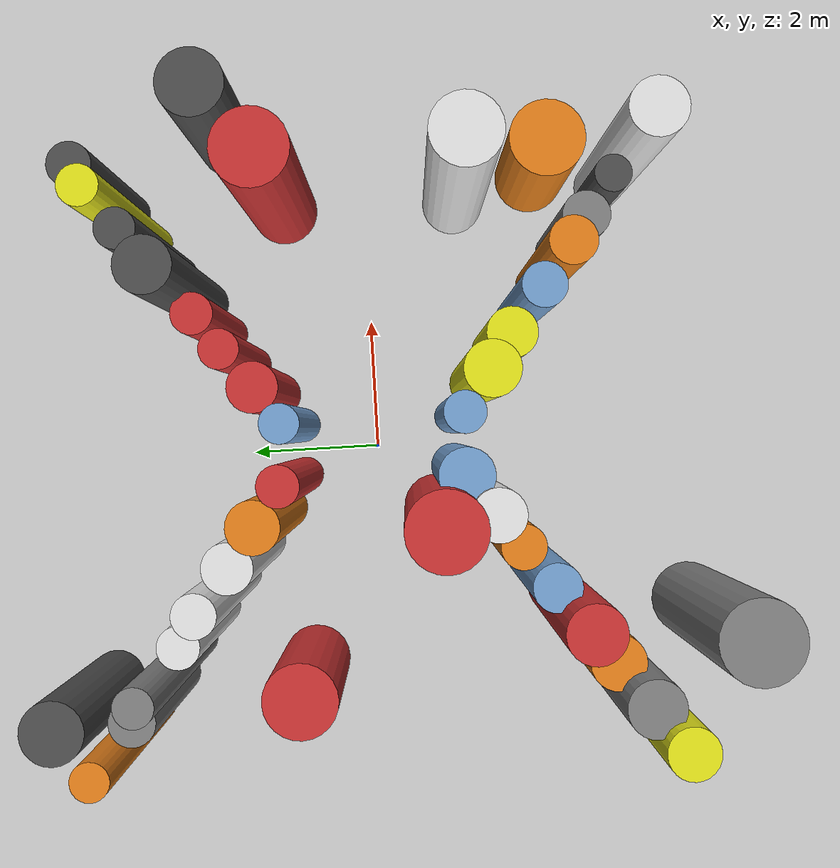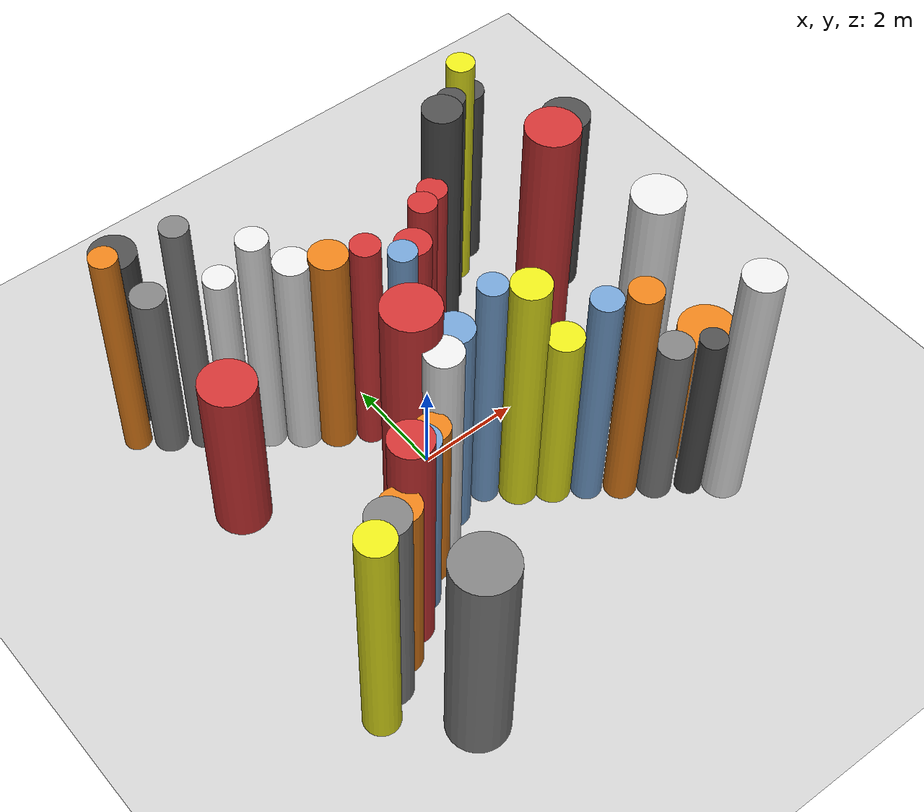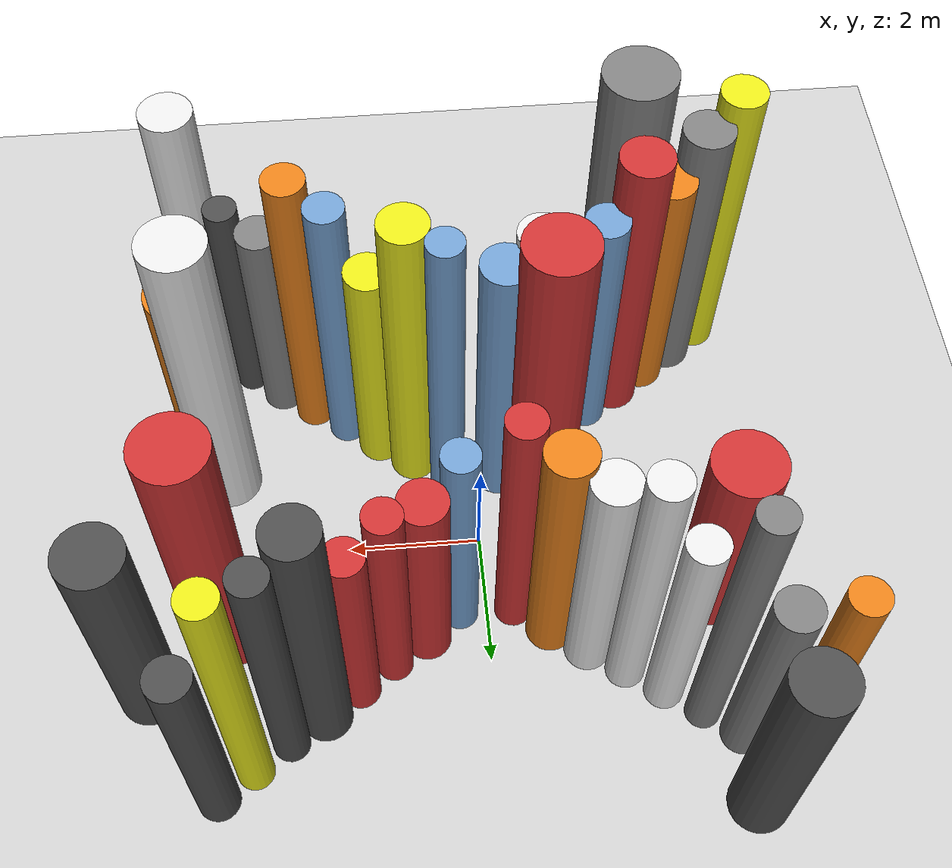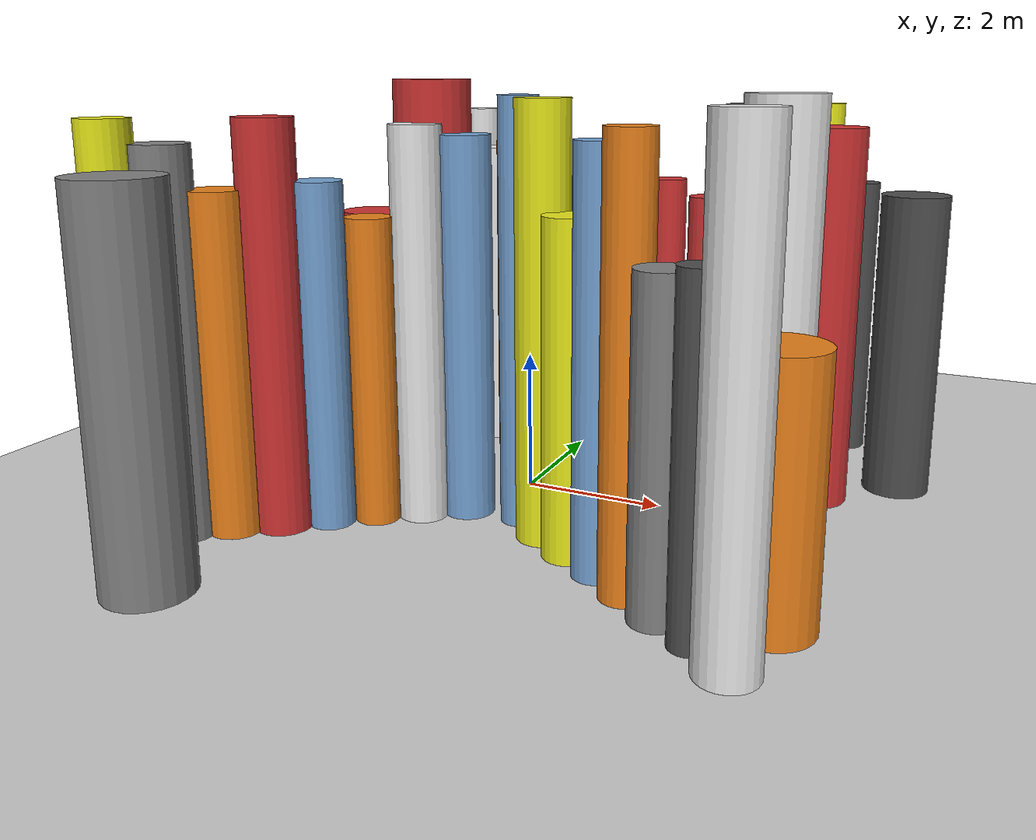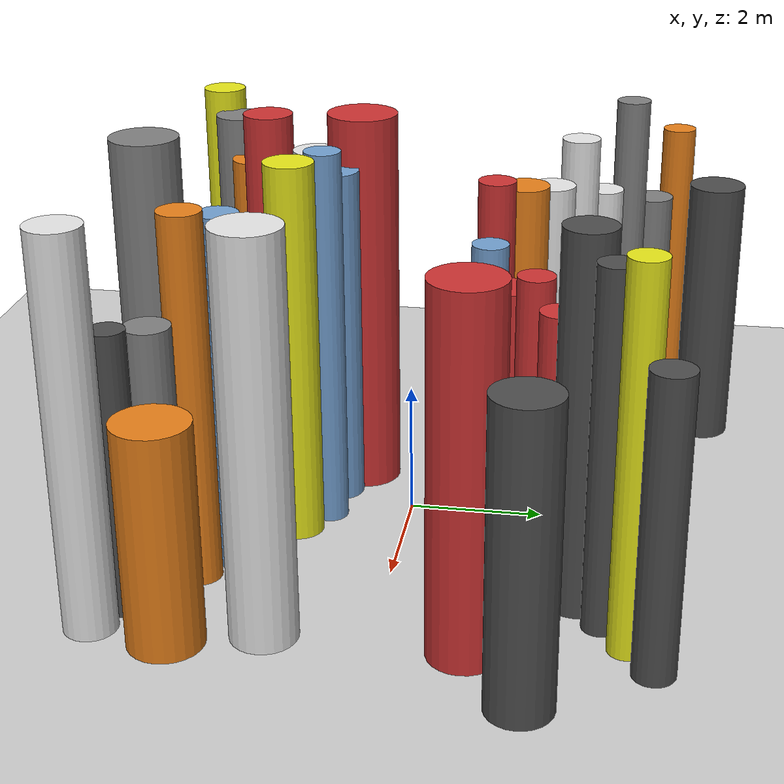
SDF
<?xml version='1.0'?>
<sdf version='1.6'>
  <world name='routeA_rl_v1__dense_recovery__rl_train__bottleneck_corridor__000067'>
    <!-- Sun light -->
    <light name='sun' type='directional'>
      <cast_shadows>1</cast_shadows>
      <pose>0 0 10 0 0 0</pose>
      <diffuse>0.8 0.8 0.8 1</diffuse>
      <specular>0.2 0.2 0.2 1</specular>
      <attenuation>
        <range>1000</range>
        <constant>0.9</constant>
        <linear>0.01</linear>
        <quadratic>0.001</quadratic>
      </attenuation>
      <direction>-0.5 0.1 -0.9</direction>
    </light>

    <!-- Ground plane -->
    <model name='ground_plane'>
      <static>1</static>
      <link name='link'>
        <collision name='collision'>
          <geometry>
            <plane>
              <normal>0 0 1</normal>
              <size>100 100</size>
            </plane>
          </geometry>
          <surface>
            <contact>
              <collide_bitmask>65535</collide_bitmask>
              <ode/>
            </contact>
            <friction>
              <ode>
                <mu>100</mu>
                <mu2>50</mu2>
              </ode>
              <torsional><ode/></torsional>
            </friction>
            <bounce/>
          </surface>
          <max_contacts>10</max_contacts>
        </collision>
        <visual name='visual'>
          <cast_shadows>0</cast_shadows>
          <geometry>
            <plane>
              <normal>0 0 1</normal>
              <size>100 100</size>
            </plane>
          </geometry>
          <material>
            <script>
              <uri>file://media/materials/scripts/gazebo.material</uri>
              <n>Gazebo/Grey</n>
            </script>
          </material>
        </visual>
      </link>
    </model>

    <!-- Environment -->
    <magnetic_field>6e-06 2.3e-05 -4.2e-05</magnetic_field>
    <atmosphere type='adiabatic'/>
    <physics name='default_physics' default='0' type='ode'>
      <gravity>0 0 -9.8</gravity>
      <max_step_size>0.004</max_step_size>
      <real_time_factor>1</real_time_factor>
      <real_time_update_rate>250</real_time_update_rate>
    </physics>
    <scene>
      <ambient>0.4 0.4 0.4 1</ambient>
      <background>0.7 0.7 0.7 1</background>
      <shadows>1</shadows>
    </scene>
    <wind/>
    <spherical_coordinates>
      <surface_model>EARTH_WGS84</surface_model>
      <latitude_deg>0</latitude_deg>
      <longitude_deg>0</longitude_deg>
      <elevation>0</elevation>
      <heading_deg>0</heading_deg>
    </spherical_coordinates>

    <!-- ============ OBSTACLES (40) ============ -->
    <model name='funnel_l_0'>
      <static>1</static>
      <link name='link'>
        <visual name='visual'>
          <geometry>
            <cylinder>
              <radius>0.3439</radius>
              <length>5.5111</length>
            </cylinder>
          </geometry>
          <material>
            <script>
              <n>Gazebo/Yellow</n>
              <uri>file://media/materials/scripts/gazebo.material</uri>
            </script>
            <ambient>0.9 0.9 0.1 1</ambient>
          </material>
        </visual>
        <collision name='collision'>
          <geometry>
            <cylinder>
              <radius>0.3439</radius>
              <length>5.5111</length>
            </cylinder>
          </geometry>
          <max_contacts>10</max_contacts>
          <surface>
            <contact><ode/></contact>
            <bounce/>
            <friction>
              <ode><mu>1</mu><mu2>1</mu2></ode>
              <torsional><ode/></torsional>
            </friction>
          </surface>
        </collision>
      </link>
      <pose>-4.0000 -3.8000 2.7555 0 0 0.0000</pose>
    </model>

    <model name='funnel_r_0'>
      <static>1</static>
      <link name='link'>
        <visual name='visual'>
          <geometry>
            <cylinder>
              <radius>0.2608</radius>
              <length>5.1161</length>
            </cylinder>
          </geometry>
          <material>
            <script>
              <n>Gazebo/Orange</n>
              <uri>file://media/materials/scripts/gazebo.material</uri>
            </script>
            <ambient>0.9 0.5 0.1 1</ambient>
          </material>
        </visual>
        <collision name='collision'>
          <geometry>
            <cylinder>
              <radius>0.2608</radius>
              <length>5.1161</length>
            </cylinder>
          </geometry>
          <max_contacts>10</max_contacts>
          <surface>
            <contact><ode/></contact>
            <bounce/>
            <friction>
              <ode><mu>1</mu><mu2>1</mu2></ode>
              <torsional><ode/></torsional>
            </friction>
          </surface>
        </collision>
      </link>
      <pose>-4.0000 3.8000 2.5581 0 0 0.0000</pose>
    </model>

    <model name='funnel_l_1'>
      <static>1</static>
      <link name='link'>
        <visual name='visual'>
          <geometry>
            <cylinder>
              <radius>0.3849</radius>
              <length>5.1941</length>
            </cylinder>
          </geometry>
          <material>
            <script>
              <n>Gazebo/Grey</n>
              <uri>file://media/materials/scripts/gazebo.material</uri>
            </script>
            <ambient>0.5 0.5 0.5 1</ambient>
          </material>
        </visual>
        <collision name='collision'>
          <geometry>
            <cylinder>
              <radius>0.3849</radius>
              <length>5.1941</length>
            </cylinder>
          </geometry>
          <max_contacts>10</max_contacts>
          <surface>
            <contact><ode/></contact>
            <bounce/>
            <friction>
              <ode><mu>1</mu><mu2>1</mu2></ode>
              <torsional><ode/></torsional>
            </friction>
          </surface>
        </collision>
      </link>
      <pose>-3.4857 -3.4286 2.5970 0 0 0.0000</pose>
    </model>

    <model name='funnel_r_1'>
      <static>1</static>
      <link name='link'>
        <visual name='visual'>
          <geometry>
            <cylinder>
              <radius>0.3235</radius>
              <length>4.1059</length>
            </cylinder>
          </geometry>
          <material>
            <script>
              <n>Gazebo/Grey</n>
              <uri>file://media/materials/scripts/gazebo.material</uri>
            </script>
            <ambient>0.5 0.5 0.5 1</ambient>
          </material>
        </visual>
        <collision name='collision'>
          <geometry>
            <cylinder>
              <radius>0.3235</radius>
              <length>4.1059</length>
            </cylinder>
          </geometry>
          <max_contacts>10</max_contacts>
          <surface>
            <contact><ode/></contact>
            <bounce/>
            <friction>
              <ode><mu>1</mu><mu2>1</mu2></ode>
              <torsional><ode/></torsional>
            </friction>
          </surface>
        </collision>
      </link>
      <pose>-3.4857 3.4286 2.0529 0 0 0.0000</pose>
    </model>

    <model name='funnel_l_2'>
      <static>1</static>
      <link name='link'>
        <visual name='visual'>
          <geometry>
            <cylinder>
              <radius>0.3729</radius>
              <length>4.6081</length>
            </cylinder>
          </geometry>
          <material>
            <script>
              <n>Gazebo/Orange</n>
              <uri>file://media/materials/scripts/gazebo.material</uri>
            </script>
            <ambient>0.9 0.5 0.1 1</ambient>
          </material>
        </visual>
        <collision name='collision'>
          <geometry>
            <cylinder>
              <radius>0.3729</radius>
              <length>4.6081</length>
            </cylinder>
          </geometry>
          <max_contacts>10</max_contacts>
          <surface>
            <contact><ode/></contact>
            <bounce/>
            <friction>
              <ode><mu>1</mu><mu2>1</mu2></ode>
              <torsional><ode/></torsional>
            </friction>
          </surface>
        </collision>
      </link>
      <pose>-2.9714 -3.0571 2.3040 0 0 0.0000</pose>
    </model>

    <model name='funnel_r_2'>
      <static>1</static>
      <link name='link'>
        <visual name='visual'>
          <geometry>
            <cylinder>
              <radius>0.2605</radius>
              <length>5.8098</length>
            </cylinder>
          </geometry>
          <material>
            <script>
              <n>Gazebo/Grey</n>
              <uri>file://media/materials/scripts/gazebo.material</uri>
            </script>
            <ambient>0.5 0.5 0.5 1</ambient>
          </material>
        </visual>
        <collision name='collision'>
          <geometry>
            <cylinder>
              <radius>0.2605</radius>
              <length>5.8098</length>
            </cylinder>
          </geometry>
          <max_contacts>10</max_contacts>
          <surface>
            <contact><ode/></contact>
            <bounce/>
            <friction>
              <ode><mu>1</mu><mu2>1</mu2></ode>
              <torsional><ode/></torsional>
            </friction>
          </surface>
        </collision>
      </link>
      <pose>-2.9714 3.0571 2.9049 0 0 0.0000</pose>
    </model>

    <model name='funnel_l_3'>
      <static>1</static>
      <link name='link'>
        <visual name='visual'>
          <geometry>
            <cylinder>
              <radius>0.3944</radius>
              <length>5.5113</length>
            </cylinder>
          </geometry>
          <material>
            <script>
              <n>Gazebo/Red</n>
              <uri>file://media/materials/scripts/gazebo.material</uri>
            </script>
            <ambient>0.8 0.2 0.2 1</ambient>
          </material>
        </visual>
        <collision name='collision'>
          <geometry>
            <cylinder>
              <radius>0.3944</radius>
              <length>5.5113</length>
            </cylinder>
          </geometry>
          <max_contacts>10</max_contacts>
          <surface>
            <contact><ode/></contact>
            <bounce/>
            <friction>
              <ode><mu>1</mu><mu2>1</mu2></ode>
              <torsional><ode/></torsional>
            </friction>
          </surface>
        </collision>
      </link>
      <pose>-2.4571 -2.6857 2.7557 0 0 0.0000</pose>
    </model>

    <model name='funnel_r_3'>
      <static>1</static>
      <link name='link'>
        <visual name='visual'>
          <geometry>
            <cylinder>
              <radius>0.2902</radius>
              <length>4.5166</length>
            </cylinder>
          </geometry>
          <material>
            <script>
              <n>Gazebo/White</n>
              <uri>file://media/materials/scripts/gazebo.material</uri>
            </script>
            <ambient>0.9 0.9 0.9 1</ambient>
          </material>
        </visual>
        <collision name='collision'>
          <geometry>
            <cylinder>
              <radius>0.2902</radius>
              <length>4.5166</length>
            </cylinder>
          </geometry>
          <max_contacts>10</max_contacts>
          <surface>
            <contact><ode/></contact>
            <bounce/>
            <friction>
              <ode><mu>1</mu><mu2>1</mu2></ode>
              <torsional><ode/></torsional>
            </friction>
          </surface>
        </collision>
      </link>
      <pose>-2.4571 2.6857 2.2583 0 0 0.0000</pose>
    </model>

    <model name='funnel_l_4'>
      <static>1</static>
      <link name='link'>
        <visual name='visual'>
          <geometry>
            <cylinder>
              <radius>0.3294</radius>
              <length>4.6955</length>
            </cylinder>
          </geometry>
          <material>
            <script>
              <n>Gazebo/Blue</n>
              <uri>file://media/materials/scripts/gazebo.material</uri>
            </script>
            <ambient>0.447 0.624 0.812 1</ambient>
          </material>
        </visual>
        <collision name='collision'>
          <geometry>
            <cylinder>
              <radius>0.3294</radius>
              <length>4.6955</length>
            </cylinder>
          </geometry>
          <max_contacts>10</max_contacts>
          <surface>
            <contact><ode/></contact>
            <bounce/>
            <friction>
              <ode><mu>1</mu><mu2>1</mu2></ode>
              <torsional><ode/></torsional>
            </friction>
          </surface>
        </collision>
      </link>
      <pose>-1.9429 -2.3143 2.3477 0 0 0.0000</pose>
    </model>

    <model name='funnel_r_4'>
      <static>1</static>
      <link name='link'>
        <visual name='visual'>
          <geometry>
            <cylinder>
              <radius>0.2917</radius>
              <length>5.4546</length>
            </cylinder>
          </geometry>
          <material>
            <script>
              <n>Gazebo/White</n>
              <uri>file://media/materials/scripts/gazebo.material</uri>
            </script>
            <ambient>0.9 0.9 0.9 1</ambient>
          </material>
        </visual>
        <collision name='collision'>
          <geometry>
            <cylinder>
              <radius>0.2917</radius>
              <length>5.4546</length>
            </cylinder>
          </geometry>
          <max_contacts>10</max_contacts>
          <surface>
            <contact><ode/></contact>
            <bounce/>
            <friction>
              <ode><mu>1</mu><mu2>1</mu2></ode>
              <torsional><ode/></torsional>
            </friction>
          </surface>
        </collision>
      </link>
      <pose>-1.9429 2.3143 2.7273 0 0 0.0000</pose>
    </model>

    <model name='funnel_l_5'>
      <static>1</static>
      <link name='link'>
        <visual name='visual'>
          <geometry>
            <cylinder>
              <radius>0.3117</radius>
              <length>4.2095</length>
            </cylinder>
          </geometry>
          <material>
            <script>
              <n>Gazebo/Orange</n>
              <uri>file://media/materials/scripts/gazebo.material</uri>
            </script>
            <ambient>0.9 0.5 0.1 1</ambient>
          </material>
        </visual>
        <collision name='collision'>
          <geometry>
            <cylinder>
              <radius>0.3117</radius>
              <length>4.2095</length>
            </cylinder>
          </geometry>
          <max_contacts>10</max_contacts>
          <surface>
            <contact><ode/></contact>
            <bounce/>
            <friction>
              <ode><mu>1</mu><mu2>1</mu2></ode>
              <torsional><ode/></torsional>
            </friction>
          </surface>
        </collision>
      </link>
      <pose>-1.4286 -1.9429 2.1047 0 0 0.0000</pose>
    </model>

    <model name='funnel_r_5'>
      <static>1</static>
      <link name='link'>
        <visual name='visual'>
          <geometry>
            <cylinder>
              <radius>0.3410</radius>
              <length>4.8639</length>
            </cylinder>
          </geometry>
          <material>
            <script>
              <n>Gazebo/White</n>
              <uri>file://media/materials/scripts/gazebo.material</uri>
            </script>
            <ambient>0.9 0.9 0.9 1</ambient>
          </material>
        </visual>
        <collision name='collision'>
          <geometry>
            <cylinder>
              <radius>0.3410</radius>
              <length>4.8639</length>
            </cylinder>
          </geometry>
          <max_contacts>10</max_contacts>
          <surface>
            <contact><ode/></contact>
            <bounce/>
            <friction>
              <ode><mu>1</mu><mu2>1</mu2></ode>
              <torsional><ode/></torsional>
            </friction>
          </surface>
        </collision>
      </link>
      <pose>-1.4286 1.9429 2.4320 0 0 0.0000</pose>
    </model>

    <model name='funnel_l_6'>
      <static>1</static>
      <link name='link'>
        <visual name='visual'>
          <geometry>
            <cylinder>
              <radius>0.3526</radius>
              <length>5.4023</length>
            </cylinder>
          </geometry>
          <material>
            <script>
              <n>Gazebo/White</n>
              <uri>file://media/materials/scripts/gazebo.material</uri>
            </script>
            <ambient>0.9 0.9 0.9 1</ambient>
          </material>
        </visual>
        <collision name='collision'>
          <geometry>
            <cylinder>
              <radius>0.3526</radius>
              <length>5.4023</length>
            </cylinder>
          </geometry>
          <max_contacts>10</max_contacts>
          <surface>
            <contact><ode/></contact>
            <bounce/>
            <friction>
              <ode><mu>1</mu><mu2>1</mu2></ode>
              <torsional><ode/></torsional>
            </friction>
          </surface>
        </collision>
      </link>
      <pose>-0.9143 -1.5714 2.7011 0 0 0.0000</pose>
    </model>

    <model name='funnel_r_6'>
      <static>1</static>
      <link name='link'>
        <visual name='visual'>
          <geometry>
            <cylinder>
              <radius>0.3582</radius>
              <length>4.9992</length>
            </cylinder>
          </geometry>
          <material>
            <script>
              <n>Gazebo/Orange</n>
              <uri>file://media/materials/scripts/gazebo.material</uri>
            </script>
            <ambient>0.9 0.5 0.1 1</ambient>
          </material>
        </visual>
        <collision name='collision'>
          <geometry>
            <cylinder>
              <radius>0.3582</radius>
              <length>4.9992</length>
            </cylinder>
          </geometry>
          <max_contacts>10</max_contacts>
          <surface>
            <contact><ode/></contact>
            <bounce/>
            <friction>
              <ode><mu>1</mu><mu2>1</mu2></ode>
              <torsional><ode/></torsional>
            </friction>
          </surface>
        </collision>
      </link>
      <pose>-0.9143 1.5714 2.4996 0 0 0.0000</pose>
    </model>

    <model name='funnel_l_7'>
      <static>1</static>
      <link name='link'>
        <visual name='visual'>
          <geometry>
            <cylinder>
              <radius>0.3655</radius>
              <length>5.2628</length>
            </cylinder>
          </geometry>
          <material>
            <script>
              <n>Gazebo/Blue</n>
              <uri>file://media/materials/scripts/gazebo.material</uri>
            </script>
            <ambient>0.447 0.624 0.812 1</ambient>
          </material>
        </visual>
        <collision name='collision'>
          <geometry>
            <cylinder>
              <radius>0.3655</radius>
              <length>5.2628</length>
            </cylinder>
          </geometry>
          <max_contacts>10</max_contacts>
          <surface>
            <contact><ode/></contact>
            <bounce/>
            <friction>
              <ode><mu>1</mu><mu2>1</mu2></ode>
              <torsional><ode/></torsional>
            </friction>
          </surface>
        </collision>
      </link>
      <pose>-0.4000 -1.2000 2.6314 0 0 0.0000</pose>
    </model>

    <model name='funnel_r_7'>
      <static>1</static>
      <link name='link'>
        <visual name='visual'>
          <geometry>
            <cylinder>
              <radius>0.2793</radius>
              <length>5.2105</length>
            </cylinder>
          </geometry>
          <material>
            <script>
              <n>Gazebo/Red</n>
              <uri>file://media/materials/scripts/gazebo.material</uri>
            </script>
            <ambient>0.8 0.2 0.2 1</ambient>
          </material>
        </visual>
        <collision name='collision'>
          <geometry>
            <cylinder>
              <radius>0.2793</radius>
              <length>5.2105</length>
            </cylinder>
          </geometry>
          <max_contacts>10</max_contacts>
          <surface>
            <contact><ode/></contact>
            <bounce/>
            <friction>
              <ode><mu>1</mu><mu2>1</mu2></ode>
              <torsional><ode/></torsional>
            </friction>
          </surface>
        </collision>
      </link>
      <pose>-0.4000 1.2000 2.6052 0 0 0.0000</pose>
    </model>

    <model name='funnel_out_l_0'>
      <static>1</static>
      <link name='link'>
        <visual name='visual'>
          <geometry>
            <cylinder>
              <radius>0.2683</radius>
              <length>5.7769</length>
            </cylinder>
          </geometry>
          <material>
            <script>
              <n>Gazebo/Blue</n>
              <uri>file://media/materials/scripts/gazebo.material</uri>
            </script>
            <ambient>0.447 0.624 0.812 1</ambient>
          </material>
        </visual>
        <collision name='collision'>
          <geometry>
            <cylinder>
              <radius>0.2683</radius>
              <length>5.7769</length>
            </cylinder>
          </geometry>
          <max_contacts>10</max_contacts>
          <surface>
            <contact><ode/></contact>
            <bounce/>
            <friction>
              <ode><mu>1</mu><mu2>1</mu2></ode>
              <torsional><ode/></torsional>
            </friction>
          </surface>
        </collision>
      </link>
      <pose>0.4000 -1.2000 2.8885 0 0 0.0000</pose>
    </model>

    <model name='funnel_out_r_0'>
      <static>1</static>
      <link name='link'>
        <visual name='visual'>
          <geometry>
            <cylinder>
              <radius>0.2709</radius>
              <length>4.5230</length>
            </cylinder>
          </geometry>
          <material>
            <script>
              <n>Gazebo/Blue</n>
              <uri>file://media/materials/scripts/gazebo.material</uri>
            </script>
            <ambient>0.447 0.624 0.812 1</ambient>
          </material>
        </visual>
        <collision name='collision'>
          <geometry>
            <cylinder>
              <radius>0.2709</radius>
              <length>4.5230</length>
            </cylinder>
          </geometry>
          <max_contacts>10</max_contacts>
          <surface>
            <contact><ode/></contact>
            <bounce/>
            <friction>
              <ode><mu>1</mu><mu2>1</mu2></ode>
              <torsional><ode/></torsional>
            </friction>
          </surface>
        </collision>
      </link>
      <pose>0.4000 1.2000 2.2615 0 0 0.0000</pose>
    </model>

    <model name='funnel_out_l_1'>
      <static>1</static>
      <link name='link'>
        <visual name='visual'>
          <geometry>
            <cylinder>
              <radius>0.3621</radius>
              <length>5.7567</length>
            </cylinder>
          </geometry>
          <material>
            <script>
              <n>Gazebo/Yellow</n>
              <uri>file://media/materials/scripts/gazebo.material</uri>
            </script>
            <ambient>0.9 0.9 0.1 1</ambient>
          </material>
        </visual>
        <collision name='collision'>
          <geometry>
            <cylinder>
              <radius>0.3621</radius>
              <length>5.7567</length>
            </cylinder>
          </geometry>
          <max_contacts>10</max_contacts>
          <surface>
            <contact><ode/></contact>
            <bounce/>
            <friction>
              <ode><mu>1</mu><mu2>1</mu2></ode>
              <torsional><ode/></torsional>
            </friction>
          </surface>
        </collision>
      </link>
      <pose>0.9143 -1.5714 2.8783 0 0 0.0000</pose>
    </model>

    <model name='funnel_out_r_1'>
      <static>1</static>
      <link name='link'>
        <visual name='visual'>
          <geometry>
            <cylinder>
              <radius>0.3514</radius>
              <length>4.0865</length>
            </cylinder>
          </geometry>
          <material>
            <script>
              <n>Gazebo/Red</n>
              <uri>file://media/materials/scripts/gazebo.material</uri>
            </script>
            <ambient>0.8 0.2 0.2 1</ambient>
          </material>
        </visual>
        <collision name='collision'>
          <geometry>
            <cylinder>
              <radius>0.3514</radius>
              <length>4.0865</length>
            </cylinder>
          </geometry>
          <max_contacts>10</max_contacts>
          <surface>
            <contact><ode/></contact>
            <bounce/>
            <friction>
              <ode><mu>1</mu><mu2>1</mu2></ode>
              <torsional><ode/></torsional>
            </friction>
          </surface>
        </collision>
      </link>
      <pose>0.9143 1.5714 2.0433 0 0 0.0000</pose>
    </model>

    <model name='funnel_out_l_2'>
      <static>1</static>
      <link name='link'>
        <visual name='visual'>
          <geometry>
            <cylinder>
              <radius>0.3445</radius>
              <length>4.3888</length>
            </cylinder>
          </geometry>
          <material>
            <script>
              <n>Gazebo/Yellow</n>
              <uri>file://media/materials/scripts/gazebo.material</uri>
            </script>
            <ambient>0.9 0.9 0.1 1</ambient>
          </material>
        </visual>
        <collision name='collision'>
          <geometry>
            <cylinder>
              <radius>0.3445</radius>
              <length>4.3888</length>
            </cylinder>
          </geometry>
          <max_contacts>10</max_contacts>
          <surface>
            <contact><ode/></contact>
            <bounce/>
            <friction>
              <ode><mu>1</mu><mu2>1</mu2></ode>
              <torsional><ode/></torsional>
            </friction>
          </surface>
        </collision>
      </link>
      <pose>1.4286 -1.9429 2.1944 0 0 0.0000</pose>
    </model>

    <model name='funnel_out_r_2'>
      <static>1</static>
      <link name='link'>
        <visual name='visual'>
          <geometry>
            <cylinder>
              <radius>0.2723</radius>
              <length>4.4672</length>
            </cylinder>
          </geometry>
          <material>
            <script>
              <n>Gazebo/Red</n>
              <uri>file://media/materials/scripts/gazebo.material</uri>
            </script>
            <ambient>0.8 0.2 0.2 1</ambient>
          </material>
        </visual>
        <collision name='collision'>
          <geometry>
            <cylinder>
              <radius>0.2723</radius>
              <length>4.4672</length>
            </cylinder>
          </geometry>
          <max_contacts>10</max_contacts>
          <surface>
            <contact><ode/></contact>
            <bounce/>
            <friction>
              <ode><mu>1</mu><mu2>1</mu2></ode>
              <torsional><ode/></torsional>
            </friction>
          </surface>
        </collision>
      </link>
      <pose>1.4286 1.9429 2.2336 0 0 0.0000</pose>
    </model>

    <model name='funnel_out_l_3'>
      <static>1</static>
      <link name='link'>
        <visual name='visual'>
          <geometry>
            <cylinder>
              <radius>0.2935</radius>
              <length>5.3204</length>
            </cylinder>
          </geometry>
          <material>
            <script>
              <n>Gazebo/Blue</n>
              <uri>file://media/materials/scripts/gazebo.material</uri>
            </script>
            <ambient>0.447 0.624 0.812 1</ambient>
          </material>
        </visual>
        <collision name='collision'>
          <geometry>
            <cylinder>
              <radius>0.2935</radius>
              <length>5.3204</length>
            </cylinder>
          </geometry>
          <max_contacts>10</max_contacts>
          <surface>
            <contact><ode/></contact>
            <bounce/>
            <friction>
              <ode><mu>1</mu><mu2>1</mu2></ode>
              <torsional><ode/></torsional>
            </friction>
          </surface>
        </collision>
      </link>
      <pose>1.9429 -2.3143 2.6602 0 0 0.0000</pose>
    </model>

    <model name='funnel_out_r_3'>
      <static>1</static>
      <link name='link'>
        <visual name='visual'>
          <geometry>
            <cylinder>
              <radius>0.2892</radius>
              <length>4.1790</length>
            </cylinder>
          </geometry>
          <material>
            <script>
              <n>Gazebo/Red</n>
              <uri>file://media/materials/scripts/gazebo.material</uri>
            </script>
            <ambient>0.8 0.2 0.2 1</ambient>
          </material>
        </visual>
        <collision name='collision'>
          <geometry>
            <cylinder>
              <radius>0.2892</radius>
              <length>4.1790</length>
            </cylinder>
          </geometry>
          <max_contacts>10</max_contacts>
          <surface>
            <contact><ode/></contact>
            <bounce/>
            <friction>
              <ode><mu>1</mu><mu2>1</mu2></ode>
              <torsional><ode/></torsional>
            </friction>
          </surface>
        </collision>
      </link>
      <pose>1.9429 2.3143 2.0895 0 0 0.0000</pose>
    </model>

    <model name='funnel_out_l_4'>
      <static>1</static>
      <link name='link'>
        <visual name='visual'>
          <geometry>
            <cylinder>
              <radius>0.3111</radius>
              <length>5.5060</length>
            </cylinder>
          </geometry>
          <material>
            <script>
              <n>Gazebo/Orange</n>
              <uri>file://media/materials/scripts/gazebo.material</uri>
            </script>
            <ambient>0.9 0.5 0.1 1</ambient>
          </material>
        </visual>
        <collision name='collision'>
          <geometry>
            <cylinder>
              <radius>0.3111</radius>
              <length>5.5060</length>
            </cylinder>
          </geometry>
          <max_contacts>10</max_contacts>
          <surface>
            <contact><ode/></contact>
            <bounce/>
            <friction>
              <ode><mu>1</mu><mu2>1</mu2></ode>
              <torsional><ode/></torsional>
            </friction>
          </surface>
        </collision>
      </link>
      <pose>2.4571 -2.6857 2.7530 0 0 0.0000</pose>
    </model>

    <model name='funnel_out_r_4'>
      <static>1</static>
      <link name='link'>
        <visual name='visual'>
          <geometry>
            <cylinder>
              <radius>0.3769</radius>
              <length>5.5719</length>
            </cylinder>
          </geometry>
          <material>
            <script>
              <n>Gazebo/DarkGrey</n>
              <uri>file://media/materials/scripts/gazebo.material</uri>
            </script>
            <ambient>0.3 0.3 0.3 1</ambient>
          </material>
        </visual>
        <collision name='collision'>
          <geometry>
            <cylinder>
              <radius>0.3769</radius>
              <length>5.5719</length>
            </cylinder>
          </geometry>
          <max_contacts>10</max_contacts>
          <surface>
            <contact><ode/></contact>
            <bounce/>
            <friction>
              <ode><mu>1</mu><mu2>1</mu2></ode>
              <torsional><ode/></torsional>
            </friction>
          </surface>
        </collision>
      </link>
      <pose>2.4571 2.6857 2.7859 0 0 0.0000</pose>
    </model>

    <model name='funnel_out_l_5'>
      <static>1</static>
      <link name='link'>
        <visual name='visual'>
          <geometry>
            <cylinder>
              <radius>0.3276</radius>
              <length>4.0590</length>
            </cylinder>
          </geometry>
          <material>
            <script>
              <n>Gazebo/Grey</n>
              <uri>file://media/materials/scripts/gazebo.material</uri>
            </script>
            <ambient>0.5 0.5 0.5 1</ambient>
          </material>
        </visual>
        <collision name='collision'>
          <geometry>
            <cylinder>
              <radius>0.3276</radius>
              <length>4.0590</length>
            </cylinder>
          </geometry>
          <max_contacts>10</max_contacts>
          <surface>
            <contact><ode/></contact>
            <bounce/>
            <friction>
              <ode><mu>1</mu><mu2>1</mu2></ode>
              <torsional><ode/></torsional>
            </friction>
          </surface>
        </collision>
      </link>
      <pose>2.9714 -3.0571 2.0295 0 0 0.0000</pose>
    </model>

    <model name='funnel_out_r_5'>
      <static>1</static>
      <link name='link'>
        <visual name='visual'>
          <geometry>
            <cylinder>
              <radius>0.2687</radius>
              <length>5.2806</length>
            </cylinder>
          </geometry>
          <material>
            <script>
              <n>Gazebo/DarkGrey</n>
              <uri>file://media/materials/scripts/gazebo.material</uri>
            </script>
            <ambient>0.3 0.3 0.3 1</ambient>
          </material>
        </visual>
        <collision name='collision'>
          <geometry>
            <cylinder>
              <radius>0.2687</radius>
              <length>5.2806</length>
            </cylinder>
          </geometry>
          <max_contacts>10</max_contacts>
          <surface>
            <contact><ode/></contact>
            <bounce/>
            <friction>
              <ode><mu>1</mu><mu2>1</mu2></ode>
              <torsional><ode/></torsional>
            </friction>
          </surface>
        </collision>
      </link>
      <pose>2.9714 3.0571 2.6403 0 0 0.0000</pose>
    </model>

    <model name='funnel_out_l_6'>
      <static>1</static>
      <link name='link'>
        <visual name='visual'>
          <geometry>
            <cylinder>
              <radius>0.2530</radius>
              <length>4.1968</length>
            </cylinder>
          </geometry>
          <material>
            <script>
              <n>Gazebo/DarkGrey</n>
              <uri>file://media/materials/scripts/gazebo.material</uri>
            </script>
            <ambient>0.3 0.3 0.3 1</ambient>
          </material>
        </visual>
        <collision name='collision'>
          <geometry>
            <cylinder>
              <radius>0.2530</radius>
              <length>4.1968</length>
            </cylinder>
          </geometry>
          <max_contacts>10</max_contacts>
          <surface>
            <contact><ode/></contact>
            <bounce/>
            <friction>
              <ode><mu>1</mu><mu2>1</mu2></ode>
              <torsional><ode/></torsional>
            </friction>
          </surface>
        </collision>
      </link>
      <pose>3.4857 -3.4286 2.0984 0 0 0.0000</pose>
    </model>

    <model name='funnel_out_r_6'>
      <static>1</static>
      <link name='link'>
        <visual name='visual'>
          <geometry>
            <cylinder>
              <radius>0.2687</radius>
              <length>5.5746</length>
            </cylinder>
          </geometry>
          <material>
            <script>
              <n>Gazebo/Yellow</n>
              <uri>file://media/materials/scripts/gazebo.material</uri>
            </script>
            <ambient>0.9 0.9 0.1 1</ambient>
          </material>
        </visual>
        <collision name='collision'>
          <geometry>
            <cylinder>
              <radius>0.2687</radius>
              <length>5.5746</length>
            </cylinder>
          </geometry>
          <max_contacts>10</max_contacts>
          <surface>
            <contact><ode/></contact>
            <bounce/>
            <friction>
              <ode><mu>1</mu><mu2>1</mu2></ode>
              <torsional><ode/></torsional>
            </friction>
          </surface>
        </collision>
      </link>
      <pose>3.4857 3.4286 2.7873 0 0 0.0000</pose>
    </model>

    <model name='funnel_out_l_7'>
      <static>1</static>
      <link name='link'>
        <visual name='visual'>
          <geometry>
            <cylinder>
              <radius>0.3826</radius>
              <length>5.7692</length>
            </cylinder>
          </geometry>
          <material>
            <script>
              <n>Gazebo/White</n>
              <uri>file://media/materials/scripts/gazebo.material</uri>
            </script>
            <ambient>0.9 0.9 0.9 1</ambient>
          </material>
        </visual>
        <collision name='collision'>
          <geometry>
            <cylinder>
              <radius>0.3826</radius>
              <length>5.7692</length>
            </cylinder>
          </geometry>
          <max_contacts>10</max_contacts>
          <surface>
            <contact><ode/></contact>
            <bounce/>
            <friction>
              <ode><mu>1</mu><mu2>1</mu2></ode>
              <torsional><ode/></torsional>
            </friction>
          </surface>
        </collision>
      </link>
      <pose>4.0000 -3.8000 2.8846 0 0 0.0000</pose>
    </model>

    <model name='funnel_out_r_7'>
      <static>1</static>
      <link name='link'>
        <visual name='visual'>
          <geometry>
            <cylinder>
              <radius>0.3034</radius>
              <length>4.3442</length>
            </cylinder>
          </geometry>
          <material>
            <script>
              <n>Gazebo/DarkGrey</n>
              <uri>file://media/materials/scripts/gazebo.material</uri>
            </script>
            <ambient>0.3 0.3 0.3 1</ambient>
          </material>
        </visual>
        <collision name='collision'>
          <geometry>
            <cylinder>
              <radius>0.3034</radius>
              <length>4.3442</length>
            </cylinder>
          </geometry>
          <max_contacts>10</max_contacts>
          <surface>
            <contact><ode/></contact>
            <bounce/>
            <friction>
              <ode><mu>1</mu><mu2>1</mu2></ode>
              <torsional><ode/></torsional>
            </friction>
          </surface>
        </collision>
      </link>
      <pose>4.0000 3.8000 2.1721 0 0 0.0000</pose>
    </model>

    <model name='bn_scatter_0'>
      <static>1</static>
      <link name='link'>
        <visual name='visual'>
          <geometry>
            <cylinder>
              <radius>0.5221</radius>
              <length>5.3271</length>
            </cylinder>
          </geometry>
          <material>
            <script>
              <n>Gazebo/Red</n>
              <uri>file://media/materials/scripts/gazebo.material</uri>
            </script>
            <ambient>0.8 0.2 0.2 1</ambient>
          </material>
        </visual>
        <collision name='collision'>
          <geometry>
            <cylinder>
              <radius>0.5221</radius>
              <length>5.3271</length>
            </cylinder>
          </geometry>
          <max_contacts>10</max_contacts>
          <surface>
            <contact><ode/></contact>
            <bounce/>
            <friction>
              <ode><mu>1</mu><mu2>1</mu2></ode>
              <torsional><ode/></torsional>
            </friction>
          </surface>
        </collision>
      </link>
      <pose>3.8867 1.3033 2.6636 0 0 0.0000</pose>
    </model>

    <model name='bn_scatter_1'>
      <static>1</static>
      <link name='link'>
        <visual name='visual'>
          <geometry>
            <cylinder>
              <radius>0.4404</radius>
              <length>4.3358</length>
            </cylinder>
          </geometry>
          <material>
            <script>
              <n>Gazebo/DarkGrey</n>
              <uri>file://media/materials/scripts/gazebo.material</uri>
            </script>
            <ambient>0.3 0.3 0.3 1</ambient>
          </material>
        </visual>
        <collision name='collision'>
          <geometry>
            <cylinder>
              <radius>0.4404</radius>
              <length>4.3358</length>
            </cylinder>
          </geometry>
          <max_contacts>10</max_contacts>
          <surface>
            <contact><ode/></contact>
            <bounce/>
            <friction>
              <ode><mu>1</mu><mu2>1</mu2></ode>
              <torsional><ode/></torsional>
            </friction>
          </surface>
        </collision>
      </link>
      <pose>-3.5145 4.4543 2.1679 0 0 0.0000</pose>
    </model>

    <model name='bn_scatter_2'>
      <static>1</static>
      <link name='link'>
        <visual name='visual'>
          <geometry>
            <cylinder>
              <radius>0.5419</radius>
              <length>3.2715</length>
            </cylinder>
          </geometry>
          <material>
            <script>
              <n>Gazebo/Orange</n>
              <uri>file://media/materials/scripts/gazebo.material</uri>
            </script>
            <ambient>0.9 0.5 0.1 1</ambient>
          </material>
        </visual>
        <collision name='collision'>
          <geometry>
            <cylinder>
              <radius>0.5419</radius>
              <length>3.2715</length>
            </cylinder>
          </geometry>
          <max_contacts>10</max_contacts>
          <surface>
            <contact><ode/></contact>
            <bounce/>
            <friction>
              <ode><mu>1</mu><mu2>1</mu2></ode>
              <torsional><ode/></torsional>
            </friction>
          </surface>
        </collision>
      </link>
      <pose>4.1980 -2.6808 1.6357 0 0 0.0000</pose>
    </model>

    <model name='bn_scatter_3'>
      <static>1</static>
      <link name='link'>
        <visual name='visual'>
          <geometry>
            <cylinder>
              <radius>0.5267</radius>
              <length>5.9618</length>
            </cylinder>
          </geometry>
          <material>
            <script>
              <n>Gazebo/Red</n>
              <uri>file://media/materials/scripts/gazebo.material</uri>
            </script>
            <ambient>0.8 0.2 0.2 1</ambient>
          </material>
        </visual>
        <collision name='collision'>
          <geometry>
            <cylinder>
              <radius>0.5267</radius>
              <length>5.9618</length>
            </cylinder>
          </geometry>
          <max_contacts>10</max_contacts>
          <surface>
            <contact><ode/></contact>
            <bounce/>
            <friction>
              <ode><mu>1</mu><mu2>1</mu2></ode>
              <torsional><ode/></torsional>
            </friction>
          </surface>
        </collision>
      </link>
      <pose>-1.0419 -0.8881 2.9809 0 0 0.0000</pose>
    </model>

    <model name='bn_scatter_4'>
      <static>1</static>
      <link name='link'>
        <visual name='visual'>
          <geometry>
            <cylinder>
              <radius>0.5299</radius>
              <length>3.8075</length>
            </cylinder>
          </geometry>
          <material>
            <script>
              <n>Gazebo/Red</n>
              <uri>file://media/materials/scripts/gazebo.material</uri>
            </script>
            <ambient>0.8 0.2 0.2 1</ambient>
          </material>
        </visual>
        <collision name='collision'>
          <geometry>
            <cylinder>
              <radius>0.5299</radius>
              <length>3.8075</length>
            </cylinder>
          </geometry>
          <max_contacts>10</max_contacts>
          <surface>
            <contact><ode/></contact>
            <bounce/>
            <friction>
              <ode><mu>1</mu><mu2>1</mu2></ode>
              <torsional><ode/></torsional>
            </friction>
          </surface>
        </collision>
      </link>
      <pose>-3.3836 1.1914 1.9037 0 0 0.0000</pose>
    </model>

    <model name='bn_scatter_5'>
      <static>1</static>
      <link name='link'>
        <visual name='visual'>
          <geometry>
            <cylinder>
              <radius>0.4700</radius>
              <length>4.3677</length>
            </cylinder>
          </geometry>
          <material>
            <script>
              <n>Gazebo/DarkGrey</n>
              <uri>file://media/materials/scripts/gazebo.material</uri>
            </script>
            <ambient>0.3 0.3 0.3 1</ambient>
          </material>
        </visual>
        <collision name='collision'>
          <geometry>
            <cylinder>
              <radius>0.4700</radius>
              <length>4.3677</length>
            </cylinder>
          </geometry>
          <max_contacts>10</max_contacts>
          <surface>
            <contact><ode/></contact>
            <bounce/>
            <friction>
              <ode><mu>1</mu><mu2>1</mu2></ode>
              <torsional><ode/></torsional>
            </friction>
          </surface>
        </collision>
      </link>
      <pose>4.9915 2.1412 2.1839 0 0 0.0000</pose>
    </model>

    <model name='bn_scatter_6'>
      <static>1</static>
      <link name='link'>
        <visual name='visual'>
          <geometry>
            <cylinder>
              <radius>0.5843</radius>
              <length>4.9546</length>
            </cylinder>
          </geometry>
          <material>
            <script>
              <n>Gazebo/Grey</n>
              <uri>file://media/materials/scripts/gazebo.material</uri>
            </script>
            <ambient>0.5 0.5 0.5 1</ambient>
          </material>
        </visual>
        <collision name='collision'>
          <geometry>
            <cylinder>
              <radius>0.5843</radius>
              <length>4.9546</length>
            </cylinder>
          </geometry>
          <max_contacts>10</max_contacts>
          <surface>
            <contact><ode/></contact>
            <bounce/>
            <friction>
              <ode><mu>1</mu><mu2>1</mu2></ode>
              <torsional><ode/></torsional>
            </friction>
          </surface>
        </collision>
      </link>
      <pose>-2.7647 -4.8710 2.4773 0 0 0.0000</pose>
    </model>

    <model name='bn_scatter_7'>
      <static>1</static>
      <link name='link'>
        <visual name='visual'>
          <geometry>
            <cylinder>
              <radius>0.4799</radius>
              <length>5.8355</length>
            </cylinder>
          </geometry>
          <material>
            <script>
              <n>Gazebo/White</n>
              <uri>file://media/materials/scripts/gazebo.material</uri>
            </script>
            <ambient>0.9 0.9 0.9 1</ambient>
          </material>
        </visual>
        <collision name='collision'>
          <geometry>
            <cylinder>
              <radius>0.4799</radius>
              <length>5.8355</length>
            </cylinder>
          </geometry>
          <max_contacts>10</max_contacts>
          <surface>
            <contact><ode/></contact>
            <bounce/>
            <friction>
              <ode><mu>1</mu><mu2>1</mu2></ode>
              <torsional><ode/></torsional>
            </friction>
          </surface>
        </collision>
      </link>
      <pose>3.8510 -1.4166 2.9177 0 0 0.0000</pose>
    </model>

    <!-- GUI camera -->
    <gui fullscreen='0'>
      <camera name='user_camera'>
        <pose>-15 0 18 0 0.85 0.15</pose>
        <view_controller>orbit</view_controller>
        <projection_type>perspective</projection_type>
      </camera>
    </gui>
  </world>
</sdf>
